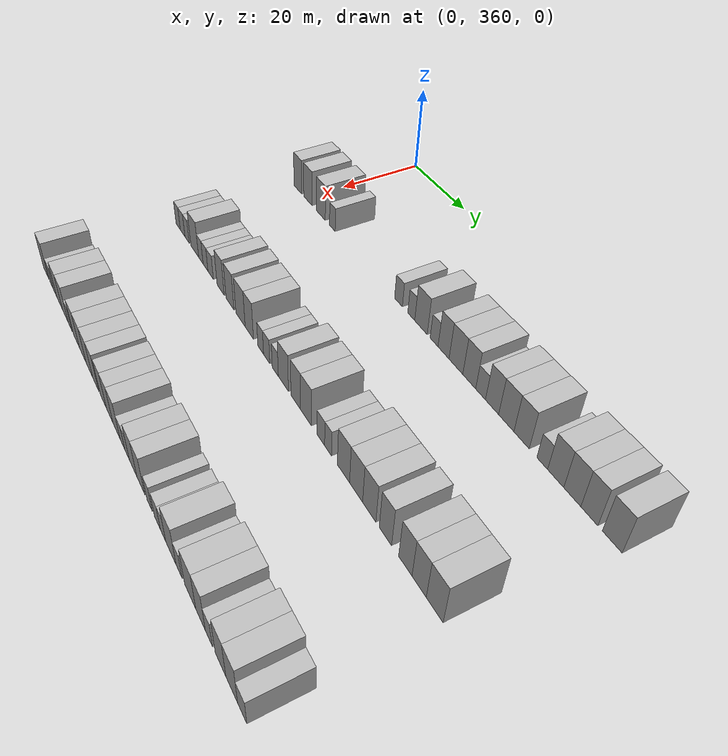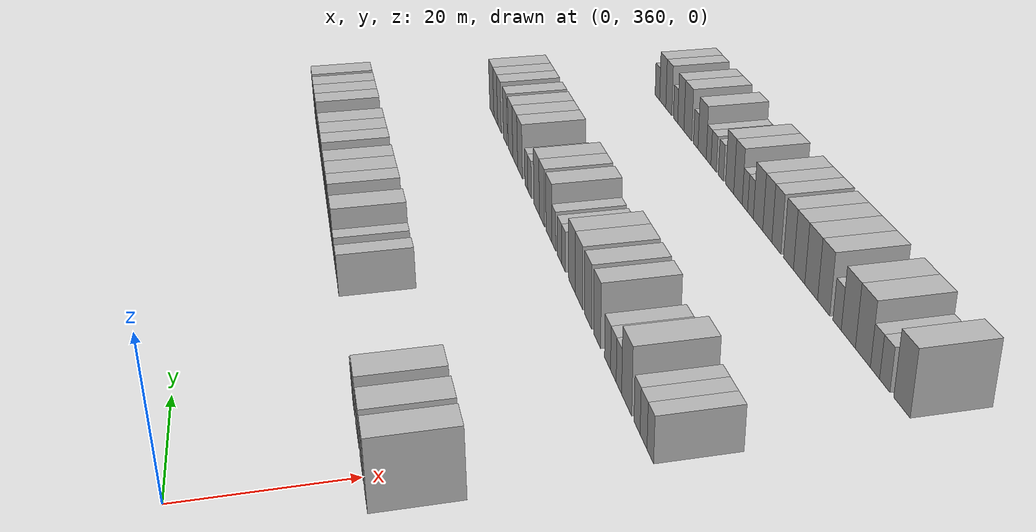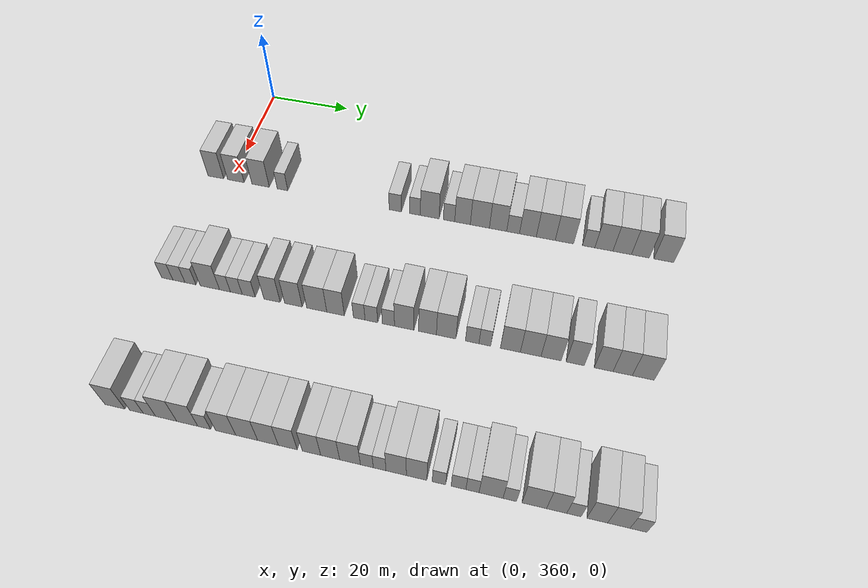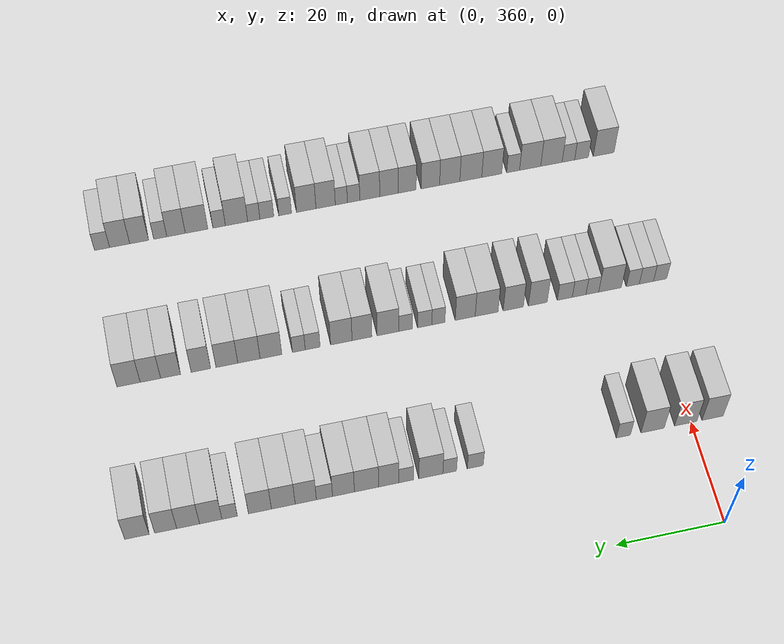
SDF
<sdf version="1.6">
 <world name="default">
  <model name="building_211">
   <static>1</static>
   <pose>25.0000 355.9361 0 0.000000 0.000000 0.000000</pose>
   <link name="link">
    <pose>0 0 4.50 0 0 0</pose>
    <collision name="collision"><geometry><box><size>10.0000 4.0289 9.0000</size></box></geometry></collision>
    <visual name="visual">
     <cast_shadows>0</cast_shadows>
     <geometry><box><size>10.0000 4.0289 9.0000</size></box></geometry>
     <material>
      <script>
       <uri>model://HANNAS_wall/materials/scripts</uri>
       <uri>model://HANNAS_wall/materials/textures</uri>
       <name>vrc/HANNAS_wall</name>
      </script>
     </material>
    </visual>
   </link>
  </model>
  <model name="building_212">
   <static>1</static>
   <pose>25.0000 361.0607 0 0.000000 0.000000 0.000000</pose>
   <link name="link">
    <pose>0 0 4.50 0 0 0</pose>
    <collision name="collision"><geometry><box><size>10.0000 4.2203 9.0000</size></box></geometry></collision>
    <visual name="visual">
     <cast_shadows>0</cast_shadows>
     <geometry><box><size>10.0000 4.2203 9.0000</size></box></geometry>
     <material>
      <script>
       <uri>model://HANNAS_wall/materials/scripts</uri>
       <uri>model://HANNAS_wall/materials/textures</uri>
       <name>vrc/HANNAS_wall</name>
      </script>
     </material>
    </visual>
   </link>
  </model>
  <model name="building_213">
   <static>1</static>
   <pose>25.0000 367.3723 0 0.000000 0.000000 0.000000</pose>
   <link name="link">
    <pose>0 0 4.50 0 0 0</pose>
    <collision name="collision"><geometry><box><size>10.0000 4.4027 9.0000</size></box></geometry></collision>
    <visual name="visual">
     <cast_shadows>0</cast_shadows>
     <geometry><box><size>10.0000 4.4027 9.0000</size></box></geometry>
     <material>
      <script>
       <uri>model://HANNAS_wall/materials/scripts</uri>
       <uri>model://HANNAS_wall/materials/textures</uri>
       <name>vrc/HANNAS_wall</name>
      </script>
     </material>
    </visual>
   </link>
  </model>
  <model name="building_214">
   <static>1</static>
   <pose>25.0000 372.9024 0 0.000000 0.000000 0.000000</pose>
   <link name="link">
    <pose>0 0 3.00 0 0 0</pose>
    <collision name="collision"><geometry><box><size>10.0000 2.6576 6.0000</size></box></geometry></collision>
    <visual name="visual">
     <cast_shadows>0</cast_shadows>
     <geometry><box><size>10.0000 2.6576 6.0000</size></box></geometry>
     <material>
      <script>
       <uri>model://HANNAS_wall/materials/scripts</uri>
       <uri>model://HANNAS_wall/materials/textures</uri>
       <name>vrc/HANNAS_wall</name>
      </script>
     </material>
    </visual>
   </link>
  </model>
  <model name="building_215">
   <static>1</static>
   <pose>25.0000 400.6600 0 0.000000 0.000000 0.000000</pose>
   <link name="link">
    <pose>0 0 3.00 0 0 0</pose>
    <collision name="collision"><geometry><box><size>10.0000 2.9525 6.0000</size></box></geometry></collision>
    <visual name="visual">
     <cast_shadows>0</cast_shadows>
     <geometry><box><size>10.0000 2.9525 6.0000</size></box></geometry>
     <material>
      <script>
       <uri>model://HANNAS_wall/materials/scripts</uri>
       <uri>model://HANNAS_wall/materials/textures</uri>
       <name>vrc/HANNAS_wall</name>
      </script>
     </material>
    </visual>
   </link>
  </model>
  <model name="building_216">
   <static>1</static>
   <pose>25.0000 405.3973 0 0.000000 0.000000 0.000000</pose>
   <link name="link">
    <pose>0 0 3.00 0 0 0</pose>
    <collision name="collision"><geometry><box><size>10.0000 2.5223 6.0000</size></box></geometry></collision>
    <visual name="visual">
     <cast_shadows>0</cast_shadows>
     <geometry><box><size>10.0000 2.5223 6.0000</size></box></geometry>
     <material>
      <script>
       <uri>model://HANNAS_wall/materials/scripts</uri>
       <uri>model://HANNAS_wall/materials/textures</uri>
       <name>vrc/HANNAS_wall</name>
      </script>
     </material>
    </visual>
   </link>
  </model>
  <model name="building_217">
   <static>1</static>
   <pose>25.0000 408.8813 0 0.000000 0.000000 0.000000</pose>
   <link name="link">
    <pose>0 0 4.50 0 0 0</pose>
    <collision name="collision"><geometry><box><size>10.0000 4.4456 9.0000</size></box></geometry></collision>
    <visual name="visual">
     <cast_shadows>0</cast_shadows>
     <geometry><box><size>10.0000 4.4456 9.0000</size></box></geometry>
     <material>
      <script>
       <uri>model://HANNAS_wall/materials/scripts</uri>
       <uri>model://HANNAS_wall/materials/textures</uri>
       <name>vrc/HANNAS_wall</name>
      </script>
     </material>
    </visual>
   </link>
  </model>
  <model name="building_218">
   <static>1</static>
   <pose>25.0000 413.4464 0 0.000000 0.000000 0.000000</pose>
   <link name="link">
    <pose>0 0 3.00 0 0 0</pose>
    <collision name="collision"><geometry><box><size>10.0000 2.6846 6.0000</size></box></geometry></collision>
    <visual name="visual">
     <cast_shadows>0</cast_shadows>
     <geometry><box><size>10.0000 2.6846 6.0000</size></box></geometry>
     <material>
      <script>
       <uri>model://HANNAS_wall/materials/scripts</uri>
       <uri>model://HANNAS_wall/materials/textures</uri>
       <name>vrc/HANNAS_wall</name>
      </script>
     </material>
    </visual>
   </link>
  </model>
  <model name="building_219">
   <static>1</static>
   <pose>25.0000 416.6251 0 0.000000 0.000000 0.000000</pose>
   <link name="link">
    <pose>0 0 4.50 0 0 0</pose>
    <collision name="collision"><geometry><box><size>10.0000 3.6728 9.0000</size></box></geometry></collision>
    <visual name="visual">
     <cast_shadows>0</cast_shadows>
     <geometry><box><size>10.0000 3.6728 9.0000</size></box></geometry>
     <material>
      <script>
       <uri>model://HANNAS_wall/materials/scripts</uri>
       <uri>model://HANNAS_wall/materials/textures</uri>
       <name>vrc/HANNAS_wall</name>
      </script>
     </material>
    </visual>
   </link>
  </model>
  <model name="building_220">
   <static>1</static>
   <pose>25.0000 420.6840 0 0.000000 0.000000 0.000000</pose>
   <link name="link">
    <pose>0 0 4.50 0 0 0</pose>
    <collision name="collision"><geometry><box><size>10.0000 4.4452 9.0000</size></box></geometry></collision>
    <visual name="visual">
     <cast_shadows>0</cast_shadows>
     <geometry><box><size>10.0000 4.4452 9.0000</size></box></geometry>
     <material>
      <script>
       <uri>model://HANNAS_wall/materials/scripts</uri>
       <uri>model://HANNAS_wall/materials/textures</uri>
       <name>vrc/HANNAS_wall</name>
      </script>
     </material>
    </visual>
   </link>
  </model>
  <model name="building_221">
   <static>1</static>
   <pose>25.0000 424.9067 0 0.000000 0.000000 0.000000</pose>
   <link name="link">
    <pose>0 0 4.50 0 0 0</pose>
    <collision name="collision"><geometry><box><size>10.0000 4.0002 9.0000</size></box></geometry></collision>
    <visual name="visual">
     <cast_shadows>0</cast_shadows>
     <geometry><box><size>10.0000 4.0002 9.0000</size></box></geometry>
     <material>
      <script>
       <uri>model://HANNAS_wall/materials/scripts</uri>
       <uri>model://HANNAS_wall/materials/textures</uri>
       <name>vrc/HANNAS_wall</name>
      </script>
     </material>
    </visual>
   </link>
  </model>
  <model name="building_222">
   <static>1</static>
   <pose>25.0000 428.3791 0 0.000000 0.000000 0.000000</pose>
   <link name="link">
    <pose>0 0 3.00 0 0 0</pose>
    <collision name="collision"><geometry><box><size>10.0000 2.9445 6.0000</size></box></geometry></collision>
    <visual name="visual">
     <cast_shadows>0</cast_shadows>
     <geometry><box><size>10.0000 2.9445 6.0000</size></box></geometry>
     <material>
      <script>
       <uri>model://HANNAS_wall/materials/scripts</uri>
       <uri>model://HANNAS_wall/materials/textures</uri>
       <name>vrc/HANNAS_wall</name>
      </script>
     </material>
    </visual>
   </link>
  </model>
  <model name="building_223">
   <static>1</static>
   <pose>25.0000 431.7760 0 0.000000 0.000000 0.000000</pose>
   <link name="link">
    <pose>0 0 4.50 0 0 0</pose>
    <collision name="collision"><geometry><box><size>10.0000 3.8493 9.0000</size></box></geometry></collision>
    <visual name="visual">
     <cast_shadows>0</cast_shadows>
     <geometry><box><size>10.0000 3.8493 9.0000</size></box></geometry>
     <material>
      <script>
       <uri>model://HANNAS_wall/materials/scripts</uri>
       <uri>model://HANNAS_wall/materials/textures</uri>
       <name>vrc/HANNAS_wall</name>
      </script>
     </material>
    </visual>
   </link>
  </model>
  <model name="building_224">
   <static>1</static>
   <pose>25.0000 435.8529 0 0.000000 0.000000 0.000000</pose>
   <link name="link">
    <pose>0 0 4.50 0 0 0</pose>
    <collision name="collision"><geometry><box><size>10.0000 4.3045 9.0000</size></box></geometry></collision>
    <visual name="visual">
     <cast_shadows>0</cast_shadows>
     <geometry><box><size>10.0000 4.3045 9.0000</size></box></geometry>
     <material>
      <script>
       <uri>model://HANNAS_wall/materials/scripts</uri>
       <uri>model://HANNAS_wall/materials/textures</uri>
       <name>vrc/HANNAS_wall</name>
      </script>
     </material>
    </visual>
   </link>
  </model>
  <model name="building_225">
   <static>1</static>
   <pose>25.0000 440.0846 0 0.000000 0.000000 0.000000</pose>
   <link name="link">
    <pose>0 0 4.50 0 0 0</pose>
    <collision name="collision"><geometry><box><size>10.0000 4.1589 9.0000</size></box></geometry></collision>
    <visual name="visual">
     <cast_shadows>0</cast_shadows>
     <geometry><box><size>10.0000 4.1589 9.0000</size></box></geometry>
     <material>
      <script>
       <uri>model://HANNAS_wall/materials/scripts</uri>
       <uri>model://HANNAS_wall/materials/textures</uri>
       <name>vrc/HANNAS_wall</name>
      </script>
     </material>
    </visual>
   </link>
  </model>
  <model name="building_226">
   <static>1</static>
   <pose>25.0000 445.5546 0 0.000000 0.000000 0.000000</pose>
   <link name="link">
    <pose>0 0 3.00 0 0 0</pose>
    <collision name="collision"><geometry><box><size>10.0000 2.7812 6.0000</size></box></geometry></collision>
    <visual name="visual">
     <cast_shadows>0</cast_shadows>
     <geometry><box><size>10.0000 2.7812 6.0000</size></box></geometry>
     <material>
      <script>
       <uri>model://HANNAS_wall/materials/scripts</uri>
       <uri>model://HANNAS_wall/materials/textures</uri>
       <name>vrc/HANNAS_wall</name>
      </script>
     </material>
    </visual>
   </link>
  </model>
  <model name="building_227">
   <static>1</static>
   <pose>25.0000 448.9539 0 0.000000 0.000000 0.000000</pose>
   <link name="link">
    <pose>0 0 4.50 0 0 0</pose>
    <collision name="collision"><geometry><box><size>10.0000 4.0174 9.0000</size></box></geometry></collision>
    <visual name="visual">
     <cast_shadows>0</cast_shadows>
     <geometry><box><size>10.0000 4.0174 9.0000</size></box></geometry>
     <material>
      <script>
       <uri>model://HANNAS_wall/materials/scripts</uri>
       <uri>model://HANNAS_wall/materials/textures</uri>
       <name>vrc/HANNAS_wall</name>
      </script>
     </material>
    </visual>
   </link>
  </model>
  <model name="building_228">
   <static>1</static>
   <pose>25.0000 453.0149 0 0.000000 0.000000 0.000000</pose>
   <link name="link">
    <pose>0 0 4.50 0 0 0</pose>
    <collision name="collision"><geometry><box><size>10.0000 4.1046 9.0000</size></box></geometry></collision>
    <visual name="visual">
     <cast_shadows>0</cast_shadows>
     <geometry><box><size>10.0000 4.1046 9.0000</size></box></geometry>
     <material>
      <script>
       <uri>model://HANNAS_wall/materials/scripts</uri>
       <uri>model://HANNAS_wall/materials/textures</uri>
       <name>vrc/HANNAS_wall</name>
      </script>
     </material>
    </visual>
   </link>
  </model>
  <model name="building_229">
   <static>1</static>
   <pose>25.0000 457.0302 0 0.000000 0.000000 0.000000</pose>
   <link name="link">
    <pose>0 0 4.50 0 0 0</pose>
    <collision name="collision"><geometry><box><size>10.0000 3.9260 9.0000</size></box></geometry></collision>
    <visual name="visual">
     <cast_shadows>0</cast_shadows>
     <geometry><box><size>10.0000 3.9260 9.0000</size></box></geometry>
     <material>
      <script>
       <uri>model://HANNAS_wall/materials/scripts</uri>
       <uri>model://HANNAS_wall/materials/textures</uri>
       <name>vrc/HANNAS_wall</name>
      </script>
     </material>
    </visual>
   </link>
  </model>
  <model name="building_230">
   <static>1</static>
   <pose>25.0000 462.1679 0 0.000000 0.000000 0.000000</pose>
   <link name="link">
    <pose>0 0 4.50 0 0 0</pose>
    <collision name="collision"><geometry><box><size>10.0000 4.3493 9.0000</size></box></geometry></collision>
    <visual name="visual">
     <cast_shadows>0</cast_shadows>
     <geometry><box><size>10.0000 4.3493 9.0000</size></box></geometry>
     <material>
      <script>
       <uri>model://HANNAS_wall/materials/scripts</uri>
       <uri>model://HANNAS_wall/materials/textures</uri>
       <name>vrc/HANNAS_wall</name>
      </script>
     </material>
    </visual>
   </link>
  </model>
  <model name="building_451">
   <static>1</static>
   <pose>55.0000 356.9311 0 0.000000 0.000000 0.000000</pose>
   <link name="link">
    <pose>0 0 3.00 0 0 0</pose>
    <collision name="collision"><geometry><box><size>10.0000 2.6340 6.0000</size></box></geometry></collision>
    <visual name="visual">
     <cast_shadows>0</cast_shadows>
     <geometry><box><size>10.0000 2.6340 6.0000</size></box></geometry>
     <material>
      <script>
       <uri>model://HANNAS_wall/materials/scripts</uri>
       <uri>model://HANNAS_wall/materials/textures</uri>
       <name>vrc/HANNAS_wall</name>
      </script>
     </material>
    </visual>
   </link>
  </model>
  <model name="building_452">
   <static>1</static>
   <pose>55.0000 359.6609 0 0.000000 0.000000 0.000000</pose>
   <link name="link">
    <pose>0 0 3.00 0 0 0</pose>
    <collision name="collision"><geometry><box><size>10.0000 2.8257 6.0000</size></box></geometry></collision>
    <visual name="visual">
     <cast_shadows>0</cast_shadows>
     <geometry><box><size>10.0000 2.8257 6.0000</size></box></geometry>
     <material>
      <script>
       <uri>model://HANNAS_wall/materials/scripts</uri>
       <uri>model://HANNAS_wall/materials/textures</uri>
       <name>vrc/HANNAS_wall</name>
      </script>
     </material>
    </visual>
   </link>
  </model>
  <model name="building_453">
   <static>1</static>
   <pose>55.0000 362.3522 0 0.000000 0.000000 0.000000</pose>
   <link name="link">
    <pose>0 0 3.00 0 0 0</pose>
    <collision name="collision"><geometry><box><size>10.0000 2.5568 6.0000</size></box></geometry></collision>
    <visual name="visual">
     <cast_shadows>0</cast_shadows>
     <geometry><box><size>10.0000 2.5568 6.0000</size></box></geometry>
     <material>
      <script>
       <uri>model://HANNAS_wall/materials/scripts</uri>
       <uri>model://HANNAS_wall/materials/textures</uri>
       <name>vrc/HANNAS_wall</name>
      </script>
     </material>
    </visual>
   </link>
  </model>
  <model name="building_454">
   <static>1</static>
   <pose>55.0000 366.8646 0 0.000000 0.000000 0.000000</pose>
   <link name="link">
    <pose>0 0 4.50 0 0 0</pose>
    <collision name="collision"><geometry><box><size>10.0000 4.4680 9.0000</size></box></geometry></collision>
    <visual name="visual">
     <cast_shadows>0</cast_shadows>
     <geometry><box><size>10.0000 4.4680 9.0000</size></box></geometry>
     <material>
      <script>
       <uri>model://HANNAS_wall/materials/scripts</uri>
       <uri>model://HANNAS_wall/materials/textures</uri>
       <name>vrc/HANNAS_wall</name>
      </script>
     </material>
    </visual>
   </link>
  </model>
  <model name="building_455">
   <static>1</static>
   <pose>55.0000 370.3542 0 0.000000 0.000000 0.000000</pose>
   <link name="link">
    <pose>0 0 3.00 0 0 0</pose>
    <collision name="collision"><geometry><box><size>10.0000 2.5112 6.0000</size></box></geometry></collision>
    <visual name="visual">
     <cast_shadows>0</cast_shadows>
     <geometry><box><size>10.0000 2.5112 6.0000</size></box></geometry>
     <material>
      <script>
       <uri>model://HANNAS_wall/materials/scripts</uri>
       <uri>model://HANNAS_wall/materials/textures</uri>
       <name>vrc/HANNAS_wall</name>
      </script>
     </material>
    </visual>
   </link>
  </model>
  <model name="building_456">
   <static>1</static>
   <pose>55.0000 372.9525 0 0.000000 0.000000 0.000000</pose>
   <link name="link">
    <pose>0 0 3.00 0 0 0</pose>
    <collision name="collision"><geometry><box><size>10.0000 2.6855 6.0000</size></box></geometry></collision>
    <visual name="visual">
     <cast_shadows>0</cast_shadows>
     <geometry><box><size>10.0000 2.6855 6.0000</size></box></geometry>
     <material>
      <script>
       <uri>model://HANNAS_wall/materials/scripts</uri>
       <uri>model://HANNAS_wall/materials/textures</uri>
       <name>vrc/HANNAS_wall</name>
      </script>
     </material>
    </visual>
   </link>
  </model>
  <model name="building_457">
   <static>1</static>
   <pose>55.0000 375.7708 0 0.000000 0.000000 0.000000</pose>
   <link name="link">
    <pose>0 0 3.00 0 0 0</pose>
    <collision name="collision"><geometry><box><size>10.0000 2.9512 6.0000</size></box></geometry></collision>
    <visual name="visual">
     <cast_shadows>0</cast_shadows>
     <geometry><box><size>10.0000 2.9512 6.0000</size></box></geometry>
     <material>
      <script>
       <uri>model://HANNAS_wall/materials/scripts</uri>
       <uri>model://HANNAS_wall/materials/textures</uri>
       <name>vrc/HANNAS_wall</name>
      </script>
     </material>
    </visual>
   </link>
  </model>
  <model name="building_458">
   <static>1</static>
   <pose>55.0000 381.0827 0 0.000000 0.000000 0.000000</pose>
   <link name="link">
    <pose>0 0 4.50 0 0 0</pose>
    <collision name="collision"><geometry><box><size>10.0000 3.6725 9.0000</size></box></geometry></collision>
    <visual name="visual">
     <cast_shadows>0</cast_shadows>
     <geometry><box><size>10.0000 3.6725 9.0000</size></box></geometry>
     <material>
      <script>
       <uri>model://HANNAS_wall/materials/scripts</uri>
       <uri>model://HANNAS_wall/materials/textures</uri>
       <name>vrc/HANNAS_wall</name>
      </script>
     </material>
    </visual>
   </link>
  </model>
  <model name="building_459">
   <static>1</static>
   <pose>55.0000 385.8835 0 0.000000 0.000000 0.000000</pose>
   <link name="link">
    <pose>0 0 4.50 0 0 0</pose>
    <collision name="collision"><geometry><box><size>10.0000 3.9289 9.0000</size></box></geometry></collision>
    <visual name="visual">
     <cast_shadows>0</cast_shadows>
     <geometry><box><size>10.0000 3.9289 9.0000</size></box></geometry>
     <material>
      <script>
       <uri>model://HANNAS_wall/materials/scripts</uri>
       <uri>model://HANNAS_wall/materials/textures</uri>
       <name>vrc/HANNAS_wall</name>
      </script>
     </material>
    </visual>
   </link>
  </model>
  <model name="building_460">
   <static>1</static>
   <pose>55.0000 391.0744 0 0.000000 0.000000 0.000000</pose>
   <link name="link">
    <pose>0 0 4.50 0 0 0</pose>
    <collision name="collision"><geometry><box><size>10.0000 4.4530 9.0000</size></box></geometry></collision>
    <visual name="visual">
     <cast_shadows>0</cast_shadows>
     <geometry><box><size>10.0000 4.4530 9.0000</size></box></geometry>
     <material>
      <script>
       <uri>model://HANNAS_wall/materials/scripts</uri>
       <uri>model://HANNAS_wall/materials/textures</uri>
       <name>vrc/HANNAS_wall</name>
      </script>
     </material>
    </visual>
   </link>
  </model>
  <model name="building_461">
   <static>1</static>
   <pose>55.0000 395.2341 0 0.000000 0.000000 0.000000</pose>
   <link name="link">
    <pose>0 0 4.50 0 0 0</pose>
    <collision name="collision"><geometry><box><size>10.0000 3.8664 9.0000</size></box></geometry></collision>
    <visual name="visual">
     <cast_shadows>0</cast_shadows>
     <geometry><box><size>10.0000 3.8664 9.0000</size></box></geometry>
     <material>
      <script>
       <uri>model://HANNAS_wall/materials/scripts</uri>
       <uri>model://HANNAS_wall/materials/textures</uri>
       <name>vrc/HANNAS_wall</name>
      </script>
     </material>
    </visual>
   </link>
  </model>
  <model name="building_462">
   <static>1</static>
   <pose>55.0000 400.4336 0 0.000000 0.000000 0.000000</pose>
   <link name="link">
    <pose>0 0 3.00 0 0 0</pose>
    <collision name="collision"><geometry><box><size>10.0000 2.5326 6.0000</size></box></geometry></collision>
    <visual name="visual">
     <cast_shadows>0</cast_shadows>
     <geometry><box><size>10.0000 2.5326 6.0000</size></box></geometry>
     <material>
      <script>
       <uri>model://HANNAS_wall/materials/scripts</uri>
       <uri>model://HANNAS_wall/materials/textures</uri>
       <name>vrc/HANNAS_wall</name>
      </script>
     </material>
    </visual>
   </link>
  </model>
  <model name="building_463">
   <static>1</static>
   <pose>55.0000 403.0745 0 0.000000 0.000000 0.000000</pose>
   <link name="link">
    <pose>0 0 3.00 0 0 0</pose>
    <collision name="collision"><geometry><box><size>10.0000 2.7491 6.0000</size></box></geometry></collision>
    <visual name="visual">
     <cast_shadows>0</cast_shadows>
     <geometry><box><size>10.0000 2.7491 6.0000</size></box></geometry>
     <material>
      <script>
       <uri>model://HANNAS_wall/materials/scripts</uri>
       <uri>model://HANNAS_wall/materials/textures</uri>
       <name>vrc/HANNAS_wall</name>
      </script>
     </material>
    </visual>
   </link>
  </model>
  <model name="building_464">
   <static>1</static>
   <pose>55.0000 406.7624 0 0.000000 0.000000 0.000000</pose>
   <link name="link">
    <pose>0 0 3.00 0 0 0</pose>
    <collision name="collision"><geometry><box><size>10.0000 2.6265 6.0000</size></box></geometry></collision>
    <visual name="visual">
     <cast_shadows>0</cast_shadows>
     <geometry><box><size>10.0000 2.6265 6.0000</size></box></geometry>
     <material>
      <script>
       <uri>model://HANNAS_wall/materials/scripts</uri>
       <uri>model://HANNAS_wall/materials/textures</uri>
       <name>vrc/HANNAS_wall</name>
      </script>
     </material>
    </visual>
   </link>
  </model>
  <model name="building_465">
   <static>1</static>
   <pose>55.0000 410.1568 0 0.000000 0.000000 0.000000</pose>
   <link name="link">
    <pose>0 0 4.50 0 0 0</pose>
    <collision name="collision"><geometry><box><size>10.0000 4.1624 9.0000</size></box></geometry></collision>
    <visual name="visual">
     <cast_shadows>0</cast_shadows>
     <geometry><box><size>10.0000 4.1624 9.0000</size></box></geometry>
     <material>
      <script>
       <uri>model://HANNAS_wall/materials/scripts</uri>
       <uri>model://HANNAS_wall/materials/textures</uri>
       <name>vrc/HANNAS_wall</name>
      </script>
     </material>
    </visual>
   </link>
  </model>
  <model name="building_466">
   <static>1</static>
   <pose>55.0000 415.1286 0 0.000000 0.000000 0.000000</pose>
   <link name="link">
    <pose>0 0 4.50 0 0 0</pose>
    <collision name="collision"><geometry><box><size>10.0000 3.7813 9.0000</size></box></geometry></collision>
    <visual name="visual">
     <cast_shadows>0</cast_shadows>
     <geometry><box><size>10.0000 3.7813 9.0000</size></box></geometry>
     <material>
      <script>
       <uri>model://HANNAS_wall/materials/scripts</uri>
       <uri>model://HANNAS_wall/materials/textures</uri>
       <name>vrc/HANNAS_wall</name>
      </script>
     </material>
    </visual>
   </link>
  </model>
  <model name="building_467">
   <static>1</static>
   <pose>55.0000 419.0778 0 0.000000 0.000000 0.000000</pose>
   <link name="link">
    <pose>0 0 4.50 0 0 0</pose>
    <collision name="collision"><geometry><box><size>10.0000 4.1171 9.0000</size></box></geometry></collision>
    <visual name="visual">
     <cast_shadows>0</cast_shadows>
     <geometry><box><size>10.0000 4.1171 9.0000</size></box></geometry>
     <material>
      <script>
       <uri>model://HANNAS_wall/materials/scripts</uri>
       <uri>model://HANNAS_wall/materials/textures</uri>
       <name>vrc/HANNAS_wall</name>
      </script>
     </material>
    </visual>
   </link>
  </model>
  <model name="building_468">
   <static>1</static>
   <pose>55.0000 424.5515 0 0.000000 0.000000 0.000000</pose>
   <link name="link">
    <pose>0 0 3.00 0 0 0</pose>
    <collision name="collision"><geometry><box><size>10.0000 2.8302 6.0000</size></box></geometry></collision>
    <visual name="visual">
     <cast_shadows>0</cast_shadows>
     <geometry><box><size>10.0000 2.8302 6.0000</size></box></geometry>
     <material>
      <script>
       <uri>model://HANNAS_wall/materials/scripts</uri>
       <uri>model://HANNAS_wall/materials/textures</uri>
       <name>vrc/HANNAS_wall</name>
      </script>
     </material>
    </visual>
   </link>
  </model>
  <model name="building_469">
   <static>1</static>
   <pose>55.0000 427.1900 0 0.000000 0.000000 0.000000</pose>
   <link name="link">
    <pose>0 0 3.00 0 0 0</pose>
    <collision name="collision"><geometry><box><size>10.0000 2.4468 6.0000</size></box></geometry></collision>
    <visual name="visual">
     <cast_shadows>0</cast_shadows>
     <geometry><box><size>10.0000 2.4468 6.0000</size></box></geometry>
     <material>
      <script>
       <uri>model://HANNAS_wall/materials/scripts</uri>
       <uri>model://HANNAS_wall/materials/textures</uri>
       <name>vrc/HANNAS_wall</name>
      </script>
     </material>
    </visual>
   </link>
  </model>
  <model name="building_470">
   <static>1</static>
   <pose>55.0000 432.4703 0 0.000000 0.000000 0.000000</pose>
   <link name="link">
    <pose>0 0 4.50 0 0 0</pose>
    <collision name="collision"><geometry><box><size>10.0000 4.1137 9.0000</size></box></geometry></collision>
    <visual name="visual">
     <cast_shadows>0</cast_shadows>
     <geometry><box><size>10.0000 4.1137 9.0000</size></box></geometry>
     <material>
      <script>
       <uri>model://HANNAS_wall/materials/scripts</uri>
       <uri>model://HANNAS_wall/materials/textures</uri>
       <name>vrc/HANNAS_wall</name>
      </script>
     </material>
    </visual>
   </link>
  </model>
  <model name="building_471">
   <static>1</static>
   <pose>55.0000 436.6385 0 0.000000 0.000000 0.000000</pose>
   <link name="link">
    <pose>0 0 4.50 0 0 0</pose>
    <collision name="collision"><geometry><box><size>10.0000 4.2228 9.0000</size></box></geometry></collision>
    <visual name="visual">
     <cast_shadows>0</cast_shadows>
     <geometry><box><size>10.0000 4.2228 9.0000</size></box></geometry>
     <material>
      <script>
       <uri>model://HANNAS_wall/materials/scripts</uri>
       <uri>model://HANNAS_wall/materials/textures</uri>
       <name>vrc/HANNAS_wall</name>
      </script>
     </material>
    </visual>
   </link>
  </model>
  <model name="building_472">
   <static>1</static>
   <pose>55.0000 440.8080 0 0.000000 0.000000 0.000000</pose>
   <link name="link">
    <pose>0 0 4.50 0 0 0</pose>
    <collision name="collision"><geometry><box><size>10.0000 4.1163 9.0000</size></box></geometry></collision>
    <visual name="visual">
     <cast_shadows>0</cast_shadows>
     <geometry><box><size>10.0000 4.1163 9.0000</size></box></geometry>
     <material>
      <script>
       <uri>model://HANNAS_wall/materials/scripts</uri>
       <uri>model://HANNAS_wall/materials/textures</uri>
       <name>vrc/HANNAS_wall</name>
      </script>
     </material>
    </visual>
   </link>
  </model>
  <model name="building_473">
   <static>1</static>
   <pose>55.0000 445.6953 0 0.000000 0.000000 0.000000</pose>
   <link name="link">
    <pose>0 0 4.50 0 0 0</pose>
    <collision name="collision"><geometry><box><size>10.0000 3.6582 9.0000</size></box></geometry></collision>
    <visual name="visual">
     <cast_shadows>0</cast_shadows>
     <geometry><box><size>10.0000 3.6582 9.0000</size></box></geometry>
     <material>
      <script>
       <uri>model://HANNAS_wall/materials/scripts</uri>
       <uri>model://HANNAS_wall/materials/textures</uri>
       <name>vrc/HANNAS_wall</name>
      </script>
     </material>
    </visual>
   </link>
  </model>
  <model name="building_474">
   <static>1</static>
   <pose>55.0000 451.3848 0 0.000000 0.000000 0.000000</pose>
   <link name="link">
    <pose>0 0 4.50 0 0 0</pose>
    <collision name="collision"><geometry><box><size>10.0000 3.7208 9.0000</size></box></geometry></collision>
    <visual name="visual">
     <cast_shadows>0</cast_shadows>
     <geometry><box><size>10.0000 3.7208 9.0000</size></box></geometry>
     <material>
      <script>
       <uri>model://HANNAS_wall/materials/scripts</uri>
       <uri>model://HANNAS_wall/materials/textures</uri>
       <name>vrc/HANNAS_wall</name>
      </script>
     </material>
    </visual>
   </link>
  </model>
  <model name="building_475">
   <static>1</static>
   <pose>55.0000 455.1536 0 0.000000 0.000000 0.000000</pose>
   <link name="link">
    <pose>0 0 4.50 0 0 0</pose>
    <collision name="collision"><geometry><box><size>10.0000 3.8169 9.0000</size></box></geometry></collision>
    <visual name="visual">
     <cast_shadows>0</cast_shadows>
     <geometry><box><size>10.0000 3.8169 9.0000</size></box></geometry>
     <material>
      <script>
       <uri>model://HANNAS_wall/materials/scripts</uri>
       <uri>model://HANNAS_wall/materials/textures</uri>
       <name>vrc/HANNAS_wall</name>
      </script>
     </material>
    </visual>
   </link>
  </model>
  <model name="building_476">
   <static>1</static>
   <pose>55.0000 459.2263 0 0.000000 0.000000 0.000000</pose>
   <link name="link">
    <pose>0 0 4.50 0 0 0</pose>
    <collision name="collision"><geometry><box><size>10.0000 4.3285 9.0000</size></box></geometry></collision>
    <visual name="visual">
     <cast_shadows>0</cast_shadows>
     <geometry><box><size>10.0000 4.3285 9.0000</size></box></geometry>
     <material>
      <script>
       <uri>model://HANNAS_wall/materials/scripts</uri>
       <uri>model://HANNAS_wall/materials/textures</uri>
       <name>vrc/HANNAS_wall</name>
      </script>
     </material>
    </visual>
   </link>
  </model>
  <model name="building_682">
   <static>1</static>
   <pose>85.0000 359.6141 0 0.000000 0.000000 0.000000</pose>
   <link name="link">
    <pose>0 0 4.50 0 0 0</pose>
    <collision name="collision"><geometry><box><size>10.0000 4.2660 9.0000</size></box></geometry></collision>
    <visual name="visual">
     <cast_shadows>0</cast_shadows>
     <geometry><box><size>10.0000 4.2660 9.0000</size></box></geometry>
     <material>
      <script>
       <uri>model://HANNAS_wall/materials/scripts</uri>
       <uri>model://HANNAS_wall/materials/textures</uri>
       <name>vrc/HANNAS_wall</name>
      </script>
     </material>
    </visual>
   </link>
  </model>
  <model name="building_683">
   <static>1</static>
   <pose>85.0000 364.1647 0 0.000000 0.000000 0.000000</pose>
   <link name="link">
    <pose>0 0 3.00 0 0 0</pose>
    <collision name="collision"><geometry><box><size>10.0000 2.8354 6.0000</size></box></geometry></collision>
    <visual name="visual">
     <cast_shadows>0</cast_shadows>
     <geometry><box><size>10.0000 2.8354 6.0000</size></box></geometry>
     <material>
      <script>
       <uri>model://HANNAS_wall/materials/scripts</uri>
       <uri>model://HANNAS_wall/materials/textures</uri>
       <name>vrc/HANNAS_wall</name>
      </script>
     </material>
    </visual>
   </link>
  </model>
  <model name="building_684">
   <static>1</static>
   <pose>85.0000 366.8703 0 0.000000 0.000000 0.000000</pose>
   <link name="link">
    <pose>0 0 3.00 0 0 0</pose>
    <collision name="collision"><geometry><box><size>10.0000 2.5757 6.0000</size></box></geometry></collision>
    <visual name="visual">
     <cast_shadows>0</cast_shadows>
     <geometry><box><size>10.0000 2.5757 6.0000</size></box></geometry>
     <material>
      <script>
       <uri>model://HANNAS_wall/materials/scripts</uri>
       <uri>model://HANNAS_wall/materials/textures</uri>
       <name>vrc/HANNAS_wall</name>
      </script>
     </material>
    </visual>
   </link>
  </model>
  <model name="building_685">
   <static>1</static>
   <pose>85.0000 370.3529 0 0.000000 0.000000 0.000000</pose>
   <link name="link">
    <pose>0 0 4.50 0 0 0</pose>
    <collision name="collision"><geometry><box><size>10.0000 4.3896 9.0000</size></box></geometry></collision>
    <visual name="visual">
     <cast_shadows>0</cast_shadows>
     <geometry><box><size>10.0000 4.3896 9.0000</size></box></geometry>
     <material>
      <script>
       <uri>model://HANNAS_wall/materials/scripts</uri>
       <uri>model://HANNAS_wall/materials/textures</uri>
       <name>vrc/HANNAS_wall</name>
      </script>
     </material>
    </visual>
   </link>
  </model>
  <model name="building_686">
   <static>1</static>
   <pose>85.0000 374.7098 0 0.000000 0.000000 0.000000</pose>
   <link name="link">
    <pose>0 0 4.50 0 0 0</pose>
    <collision name="collision"><geometry><box><size>10.0000 4.3243 9.0000</size></box></geometry></collision>
    <visual name="visual">
     <cast_shadows>0</cast_shadows>
     <geometry><box><size>10.0000 4.3243 9.0000</size></box></geometry>
     <material>
      <script>
       <uri>model://HANNAS_wall/materials/scripts</uri>
       <uri>model://HANNAS_wall/materials/textures</uri>
       <name>vrc/HANNAS_wall</name>
      </script>
     </material>
    </visual>
   </link>
  </model>
  <model name="building_687">
   <static>1</static>
   <pose>85.0000 378.1887 0 0.000000 0.000000 0.000000</pose>
   <link name="link">
    <pose>0 0 3.00 0 0 0</pose>
    <collision name="collision"><geometry><box><size>10.0000 2.6335 6.0000</size></box></geometry></collision>
    <visual name="visual">
     <cast_shadows>0</cast_shadows>
     <geometry><box><size>10.0000 2.6335 6.0000</size></box></geometry>
     <material>
      <script>
       <uri>model://HANNAS_wall/materials/scripts</uri>
       <uri>model://HANNAS_wall/materials/textures</uri>
       <name>vrc/HANNAS_wall</name>
      </script>
     </material>
    </visual>
   </link>
  </model>
  <model name="building_688">
   <static>1</static>
   <pose>85.0000 382.5390 0 0.000000 0.000000 0.000000</pose>
   <link name="link">
    <pose>0 0 4.50 0 0 0</pose>
    <collision name="collision"><geometry><box><size>10.0000 4.0669 9.0000</size></box></geometry></collision>
    <visual name="visual">
     <cast_shadows>0</cast_shadows>
     <geometry><box><size>10.0000 4.0669 9.0000</size></box></geometry>
     <material>
      <script>
       <uri>model://HANNAS_wall/materials/scripts</uri>
       <uri>model://HANNAS_wall/materials/textures</uri>
       <name>vrc/HANNAS_wall</name>
      </script>
     </material>
    </visual>
   </link>
  </model>
  <model name="building_689">
   <static>1</static>
   <pose>85.0000 386.7943 0 0.000000 0.000000 0.000000</pose>
   <link name="link">
    <pose>0 0 4.50 0 0 0</pose>
    <collision name="collision"><geometry><box><size>10.0000 4.4437 9.0000</size></box></geometry></collision>
    <visual name="visual">
     <cast_shadows>0</cast_shadows>
     <geometry><box><size>10.0000 4.4437 9.0000</size></box></geometry>
     <material>
      <script>
       <uri>model://HANNAS_wall/materials/scripts</uri>
       <uri>model://HANNAS_wall/materials/textures</uri>
       <name>vrc/HANNAS_wall</name>
      </script>
     </material>
    </visual>
   </link>
  </model>
  <model name="building_690">
   <static>1</static>
   <pose>85.0000 391.0682 0 0.000000 0.000000 0.000000</pose>
   <link name="link">
    <pose>0 0 4.50 0 0 0</pose>
    <collision name="collision"><geometry><box><size>10.0000 4.1041 9.0000</size></box></geometry></collision>
    <visual name="visual">
     <cast_shadows>0</cast_shadows>
     <geometry><box><size>10.0000 4.1041 9.0000</size></box></geometry>
     <material>
      <script>
       <uri>model://HANNAS_wall/materials/scripts</uri>
       <uri>model://HANNAS_wall/materials/textures</uri>
       <name>vrc/HANNAS_wall</name>
      </script>
     </material>
    </visual>
   </link>
  </model>
  <model name="building_691">
   <static>1</static>
   <pose>85.0000 394.9912 0 0.000000 0.000000 0.000000</pose>
   <link name="link">
    <pose>0 0 4.50 0 0 0</pose>
    <collision name="collision"><geometry><box><size>10.0000 3.7419 9.0000</size></box></geometry></collision>
    <visual name="visual">
     <cast_shadows>0</cast_shadows>
     <geometry><box><size>10.0000 3.7419 9.0000</size></box></geometry>
     <material>
      <script>
       <uri>model://HANNAS_wall/materials/scripts</uri>
       <uri>model://HANNAS_wall/materials/textures</uri>
       <name>vrc/HANNAS_wall</name>
      </script>
     </material>
    </visual>
   </link>
  </model>
  <model name="building_692">
   <static>1</static>
   <pose>85.0000 399.6668 0 0.000000 0.000000 0.000000</pose>
   <link name="link">
    <pose>0 0 4.50 0 0 0</pose>
    <collision name="collision"><geometry><box><size>10.0000 3.6092 9.0000</size></box></geometry></collision>
    <visual name="visual">
     <cast_shadows>0</cast_shadows>
     <geometry><box><size>10.0000 3.6092 9.0000</size></box></geometry>
     <material>
      <script>
       <uri>model://HANNAS_wall/materials/scripts</uri>
       <uri>model://HANNAS_wall/materials/textures</uri>
       <name>vrc/HANNAS_wall</name>
      </script>
     </material>
    </visual>
   </link>
  </model>
  <model name="building_693">
   <static>1</static>
   <pose>85.0000 403.3200 0 0.000000 0.000000 0.000000</pose>
   <link name="link">
    <pose>0 0 4.50 0 0 0</pose>
    <collision name="collision"><geometry><box><size>10.0000 3.6973 9.0000</size></box></geometry></collision>
    <visual name="visual">
     <cast_shadows>0</cast_shadows>
     <geometry><box><size>10.0000 3.6973 9.0000</size></box></geometry>
     <material>
      <script>
       <uri>model://HANNAS_wall/materials/scripts</uri>
       <uri>model://HANNAS_wall/materials/textures</uri>
       <name>vrc/HANNAS_wall</name>
      </script>
     </material>
    </visual>
   </link>
  </model>
  <model name="building_694">
   <static>1</static>
   <pose>85.0000 407.1662 0 0.000000 0.000000 0.000000</pose>
   <link name="link">
    <pose>0 0 4.50 0 0 0</pose>
    <collision name="collision"><geometry><box><size>10.0000 3.9951 9.0000</size></box></geometry></collision>
    <visual name="visual">
     <cast_shadows>0</cast_shadows>
     <geometry><box><size>10.0000 3.9951 9.0000</size></box></geometry>
     <material>
      <script>
       <uri>model://HANNAS_wall/materials/scripts</uri>
       <uri>model://HANNAS_wall/materials/textures</uri>
       <name>vrc/HANNAS_wall</name>
      </script>
     </material>
    </visual>
   </link>
  </model>
  <model name="building_695">
   <static>1</static>
   <pose>85.0000 410.4034 0 0.000000 0.000000 0.000000</pose>
   <link name="link">
    <pose>0 0 3.00 0 0 0</pose>
    <collision name="collision"><geometry><box><size>10.0000 2.4792 6.0000</size></box></geometry></collision>
    <visual name="visual">
     <cast_shadows>0</cast_shadows>
     <geometry><box><size>10.0000 2.4792 6.0000</size></box></geometry>
     <material>
      <script>
       <uri>model://HANNAS_wall/materials/scripts</uri>
       <uri>model://HANNAS_wall/materials/textures</uri>
       <name>vrc/HANNAS_wall</name>
      </script>
     </material>
    </visual>
   </link>
  </model>
  <model name="building_696">
   <static>1</static>
   <pose>85.0000 412.8536 0 0.000000 0.000000 0.000000</pose>
   <link name="link">
    <pose>0 0 3.00 0 0 0</pose>
    <collision name="collision"><geometry><box><size>10.0000 2.4212 6.0000</size></box></geometry></collision>
    <visual name="visual">
     <cast_shadows>0</cast_shadows>
     <geometry><box><size>10.0000 2.4212 6.0000</size></box></geometry>
     <material>
      <script>
       <uri>model://HANNAS_wall/materials/scripts</uri>
       <uri>model://HANNAS_wall/materials/textures</uri>
       <name>vrc/HANNAS_wall</name>
      </script>
     </material>
    </visual>
   </link>
  </model>
  <model name="building_697">
   <static>1</static>
   <pose>85.0000 415.9919 0 0.000000 0.000000 0.000000</pose>
   <link name="link">
    <pose>0 0 4.50 0 0 0</pose>
    <collision name="collision"><geometry><box><size>10.0000 3.8554 9.0000</size></box></geometry></collision>
    <visual name="visual">
     <cast_shadows>0</cast_shadows>
     <geometry><box><size>10.0000 3.8554 9.0000</size></box></geometry>
     <material>
      <script>
       <uri>model://HANNAS_wall/materials/scripts</uri>
       <uri>model://HANNAS_wall/materials/textures</uri>
       <name>vrc/HANNAS_wall</name>
      </script>
     </material>
    </visual>
   </link>
  </model>
  <model name="building_698">
   <static>1</static>
   <pose>85.0000 419.8491 0 0.000000 0.000000 0.000000</pose>
   <link name="link">
    <pose>0 0 4.50 0 0 0</pose>
    <collision name="collision"><geometry><box><size>10.0000 3.8591 9.0000</size></box></geometry></collision>
    <visual name="visual">
     <cast_shadows>0</cast_shadows>
     <geometry><box><size>10.0000 3.8591 9.0000</size></box></geometry>
     <material>
      <script>
       <uri>model://HANNAS_wall/materials/scripts</uri>
       <uri>model://HANNAS_wall/materials/textures</uri>
       <name>vrc/HANNAS_wall</name>
      </script>
     </material>
    </visual>
   </link>
  </model>
  <model name="building_699">
   <static>1</static>
   <pose>85.0000 424.0379 0 0.000000 0.000000 0.000000</pose>
   <link name="link">
    <pose>0 0 3.00 0 0 0</pose>
    <collision name="collision"><geometry><box><size>10.0000 2.5184 6.0000</size></box></geometry></collision>
    <visual name="visual">
     <cast_shadows>0</cast_shadows>
     <geometry><box><size>10.0000 2.5184 6.0000</size></box></geometry>
     <material>
      <script>
       <uri>model://HANNAS_wall/materials/scripts</uri>
       <uri>model://HANNAS_wall/materials/textures</uri>
       <name>vrc/HANNAS_wall</name>
      </script>
     </material>
    </visual>
   </link>
  </model>
  <model name="building_700">
   <static>1</static>
   <pose>85.0000 427.6686 0 0.000000 0.000000 0.000000</pose>
   <link name="link">
    <pose>0 0 3.00 0 0 0</pose>
    <collision name="collision"><geometry><box><size>10.0000 2.7429 6.0000</size></box></geometry></collision>
    <visual name="visual">
     <cast_shadows>0</cast_shadows>
     <geometry><box><size>10.0000 2.7429 6.0000</size></box></geometry>
     <material>
      <script>
       <uri>model://HANNAS_wall/materials/scripts</uri>
       <uri>model://HANNAS_wall/materials/textures</uri>
       <name>vrc/HANNAS_wall</name>
      </script>
     </material>
    </visual>
   </link>
  </model>
  <model name="building_701">
   <static>1</static>
   <pose>85.0000 430.2525 0 0.000000 0.000000 0.000000</pose>
   <link name="link">
    <pose>0 0 3.00 0 0 0</pose>
    <collision name="collision"><geometry><box><size>10.0000 2.4251 6.0000</size></box></geometry></collision>
    <visual name="visual">
     <cast_shadows>0</cast_shadows>
     <geometry><box><size>10.0000 2.4251 6.0000</size></box></geometry>
     <material>
      <script>
       <uri>model://HANNAS_wall/materials/scripts</uri>
       <uri>model://HANNAS_wall/materials/textures</uri>
       <name>vrc/HANNAS_wall</name>
      </script>
     </material>
    </visual>
   </link>
  </model>
  <model name="building_702">
   <static>1</static>
   <pose>85.0000 433.6606 0 0.000000 0.000000 0.000000</pose>
   <link name="link">
    <pose>0 0 4.50 0 0 0</pose>
    <collision name="collision"><geometry><box><size>10.0000 4.3911 9.0000</size></box></geometry></collision>
    <visual name="visual">
     <cast_shadows>0</cast_shadows>
     <geometry><box><size>10.0000 4.3911 9.0000</size></box></geometry>
     <material>
      <script>
       <uri>model://HANNAS_wall/materials/scripts</uri>
       <uri>model://HANNAS_wall/materials/textures</uri>
       <name>vrc/HANNAS_wall</name>
      </script>
     </material>
    </visual>
   </link>
  </model>
  <model name="building_703">
   <static>1</static>
   <pose>85.0000 437.0865 0 0.000000 0.000000 0.000000</pose>
   <link name="link">
    <pose>0 0 3.00 0 0 0</pose>
    <collision name="collision"><geometry><box><size>10.0000 2.4606 6.0000</size></box></geometry></collision>
    <visual name="visual">
     <cast_shadows>0</cast_shadows>
     <geometry><box><size>10.0000 2.4606 6.0000</size></box></geometry>
     <material>
      <script>
       <uri>model://HANNAS_wall/materials/scripts</uri>
       <uri>model://HANNAS_wall/materials/textures</uri>
       <name>vrc/HANNAS_wall</name>
      </script>
     </material>
    </visual>
   </link>
  </model>
  <model name="building_704">
   <static>1</static>
   <pose>85.0000 441.5277 0 0.000000 0.000000 0.000000</pose>
   <link name="link">
    <pose>0 0 4.50 0 0 0</pose>
    <collision name="collision"><geometry><box><size>10.0000 4.4218 9.0000</size></box></geometry></collision>
    <visual name="visual">
     <cast_shadows>0</cast_shadows>
     <geometry><box><size>10.0000 4.4218 9.0000</size></box></geometry>
     <material>
      <script>
       <uri>model://HANNAS_wall/materials/scripts</uri>
       <uri>model://HANNAS_wall/materials/textures</uri>
       <name>vrc/HANNAS_wall</name>
      </script>
     </material>
    </visual>
   </link>
  </model>
  <model name="building_705">
   <static>1</static>
   <pose>85.0000 445.5457 0 0.000000 0.000000 0.000000</pose>
   <link name="link">
    <pose>0 0 4.50 0 0 0</pose>
    <collision name="collision"><geometry><box><size>10.0000 3.6141 9.0000</size></box></geometry></collision>
    <visual name="visual">
     <cast_shadows>0</cast_shadows>
     <geometry><box><size>10.0000 3.6141 9.0000</size></box></geometry>
     <material>
      <script>
       <uri>model://HANNAS_wall/materials/scripts</uri>
       <uri>model://HANNAS_wall/materials/textures</uri>
       <name>vrc/HANNAS_wall</name>
      </script>
     </material>
    </visual>
   </link>
  </model>
  <model name="building_706">
   <static>1</static>
   <pose>85.0000 448.6346 0 0.000000 0.000000 0.000000</pose>
   <link name="link">
    <pose>0 0 3.00 0 0 0</pose>
    <collision name="collision"><geometry><box><size>10.0000 2.5637 6.0000</size></box></geometry></collision>
    <visual name="visual">
     <cast_shadows>0</cast_shadows>
     <geometry><box><size>10.0000 2.5637 6.0000</size></box></geometry>
     <material>
      <script>
       <uri>model://HANNAS_wall/materials/scripts</uri>
       <uri>model://HANNAS_wall/materials/textures</uri>
       <name>vrc/HANNAS_wall</name>
      </script>
     </material>
    </visual>
   </link>
  </model>
  <model name="building_707">
   <static>1</static>
   <pose>85.0000 452.7548 0 0.000000 0.000000 0.000000</pose>
   <link name="link">
    <pose>0 0 4.50 0 0 0</pose>
    <collision name="collision"><geometry><box><size>10.0000 3.6767 9.0000</size></box></geometry></collision>
    <visual name="visual">
     <cast_shadows>0</cast_shadows>
     <geometry><box><size>10.0000 3.6767 9.0000</size></box></geometry>
     <material>
      <script>
       <uri>model://HANNAS_wall/materials/scripts</uri>
       <uri>model://HANNAS_wall/materials/textures</uri>
       <name>vrc/HANNAS_wall</name>
      </script>
     </material>
    </visual>
   </link>
  </model>
  <model name="building_708">
   <static>1</static>
   <pose>85.0000 456.5486 0 0.000000 0.000000 0.000000</pose>
   <link name="link">
    <pose>0 0 4.50 0 0 0</pose>
    <collision name="collision"><geometry><box><size>10.0000 3.9111 9.0000</size></box></geometry></collision>
    <visual name="visual">
     <cast_shadows>0</cast_shadows>
     <geometry><box><size>10.0000 3.9111 9.0000</size></box></geometry>
     <material>
      <script>
       <uri>model://HANNAS_wall/materials/scripts</uri>
       <uri>model://HANNAS_wall/materials/textures</uri>
       <name>vrc/HANNAS_wall</name>
      </script>
     </material>
    </visual>
   </link>
  </model>
  <model name="building_709">
   <static>1</static>
   <pose>85.0000 459.9707 0 0.000000 0.000000 0.000000</pose>
   <link name="link">
    <pose>0 0 3.00 0 0 0</pose>
    <collision name="collision"><geometry><box><size>10.0000 2.9331 6.0000</size></box></geometry></collision>
    <visual name="visual">
     <cast_shadows>0</cast_shadows>
     <geometry><box><size>10.0000 2.9331 6.0000</size></box></geometry>
     <material>
      <script>
       <uri>model://HANNAS_wall/materials/scripts</uri>
       <uri>model://HANNAS_wall/materials/textures</uri>
       <name>vrc/HANNAS_wall</name>
      </script>
     </material>
    </visual>
   </link>
  </model>
 </world>
</sdf>
